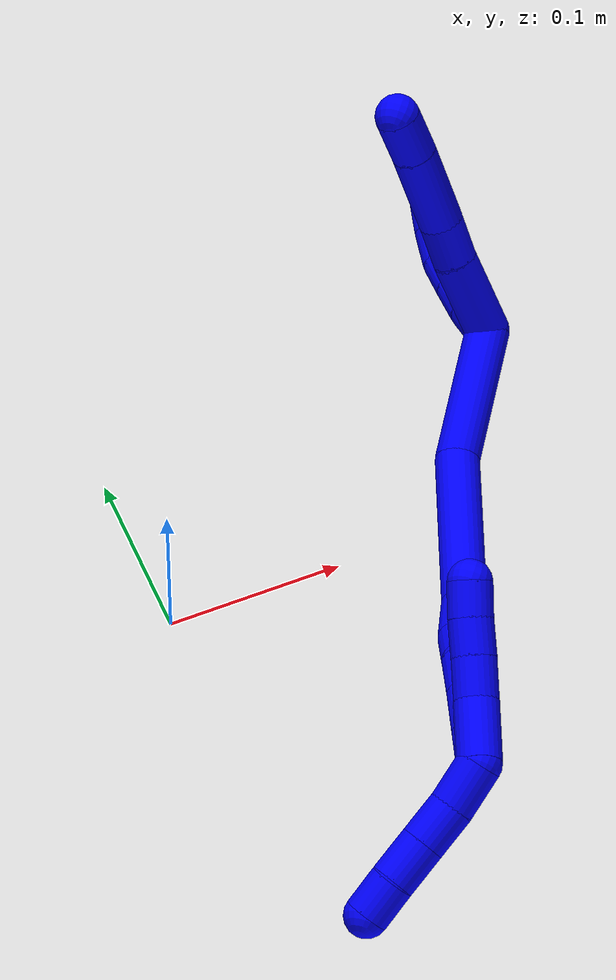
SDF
<sdf version="1.7">
 <world name="default">
  <model name="1">
   <static>0</static>
   <link name="1">
    <collision name="collision-cylinder-e_1_2_8">
     <pose>0.005056 0.022466 -0.007969 -1.91166 0.20901 -0.294834</pose>
     <geometry><cylinder><radius>0.0125</radius><length>0.048735</length></cylinder></geometry>
     <surface>
      <friction><ode><mu>1.16</mu><mu2>1.16</mu2><slip1>0</slip1><slip2>0</slip2></ode></friction>
      <contact><ode><kp>1e+06</kp><kd>1</kd><max_vel>0</max_vel><min_depth>0.001</min_depth></ode></contact>
     </surface>
    </collision>
    <visual name="visual-cylinder-e_1_2_8">
     <pose>0.005056 0.022466 -0.007969 -1.91166 0.20901 -0.294834</pose>
     <geometry><cylinder><radius>0.0125</radius><length>0.048735</length></cylinder></geometry>
     <material><ambient>0 0 1 1</ambient></material>
    </visual>
    <collision name="collision-cylinder-e_2_8_9">
     <pose>0.012987 0.055929 -0.02104 -2.0052 0.232806 -0.362298</pose>
     <geometry><cylinder><radius>0.0125</radius><length>0.024919</length></cylinder></geometry>
     <surface>
      <friction><ode><mu>1.16</mu><mu2>1.16</mu2><slip1>0</slip1><slip2>0</slip2></ode></friction>
      <contact><ode><kp>1e+06</kp><kd>1</kd><max_vel>0</max_vel><min_depth>0.001</min_depth></ode></contact>
     </surface>
    </collision>
    <visual name="visual-cylinder-e_2_8_9">
     <pose>0.012987 0.055929 -0.02104 -2.0052 0.232806 -0.362298</pose>
     <geometry><cylinder><radius>0.0125</radius><length>0.024919</length></cylinder></geometry>
     <material><ambient>0 0 1 1</ambient></material>
    </visual>
    <collision name="collision-cylinder-e_3_9_10">
     <pose>0.024714 0.089507 -0.031649 -1.80997 0.363909 -0.460192</pose>
     <geometry><cylinder><radius>0.0125</radius><length>0.049742</length></cylinder></geometry>
     <surface>
      <friction><ode><mu>1.16</mu><mu2>1.16</mu2><slip1>0</slip1><slip2>0</slip2></ode></friction>
      <contact><ode><kp>1e+06</kp><kd>1</kd><max_vel>0</max_vel><min_depth>0.001</min_depth></ode></contact>
     </surface>
    </collision>
    <visual name="visual-cylinder-e_3_9_10">
     <pose>0.024714 0.089507 -0.031649 -1.80997 0.363909 -0.460192</pose>
     <geometry><cylinder><radius>0.0125</radius><length>0.049742</length></cylinder></geometry>
     <material><ambient>0 0 1 1</ambient></material>
    </visual>
    <collision name="collision-cylinder-e_4_10_6">
     <pose>0.037794 0.124371 -0.040015 -1.79954 0.323438 -0.405338</pose>
     <geometry><cylinder><radius>0.0125</radius><length>0.026604</length></cylinder></geometry>
     <surface>
      <friction><ode><mu>1.16</mu><mu2>1.16</mu2><slip1>0</slip1><slip2>0</slip2></ode></friction>
      <contact><ode><kp>1e+06</kp><kd>1</kd><max_vel>0</max_vel><min_depth>0.001</min_depth></ode></contact>
     </surface>
    </collision>
    <visual name="visual-cylinder-e_4_10_6">
     <pose>0.037794 0.124371 -0.040015 -1.79954 0.323438 -0.405338</pose>
     <geometry><cylinder><radius>0.0125</radius><length>0.026604</length></cylinder></geometry>
     <material><ambient>0 0 1 1</ambient></material>
    </visual>
    <collision name="collision-cylinder-e_1_2_11">
     <pose>-0.006663 0.002929 -0.006857 -2.73787 -0.729226 2.15725</pose>
     <geometry><cylinder><radius>0.0125</radius><length>0.02</length></cylinder></geometry>
     <surface>
      <friction><ode><mu>1.16</mu><mu2>1.16</mu2><slip1>0</slip1><slip2>0</slip2></ode></friction>
      <contact><ode><kp>1e+06</kp><kd>1</kd><max_vel>0</max_vel><min_depth>0.001</min_depth></ode></contact>
     </surface>
    </collision>
    <visual name="visual-cylinder-e_1_2_11">
     <pose>-0.006663 0.002929 -0.006857 -2.73787 -0.729226 2.15725</pose>
     <geometry><cylinder><radius>0.0125</radius><length>0.02</length></cylinder></geometry>
     <material><ambient>0 0 1 1</ambient></material>
    </visual>
    <collision name="collision-cylinder-e_2_11_12">
     <pose>-0.019106 0.008926 -0.021276 -2.75626 -0.616345 2.04192</pose>
     <geometry><cylinder><radius>0.0125</radius><length>0.02</length></cylinder></geometry>
     <surface>
      <friction><ode><mu>1.16</mu><mu2>1.16</mu2><slip1>0</slip1><slip2>0</slip2></ode></friction>
      <contact><ode><kp>1e+06</kp><kd>1</kd><max_vel>0</max_vel><min_depth>0.001</min_depth></ode></contact>
     </surface>
    </collision>
    <visual name="visual-cylinder-e_2_11_12">
     <pose>-0.019106 0.008926 -0.021276 -2.75626 -0.616345 2.04192</pose>
     <geometry><cylinder><radius>0.0125</radius><length>0.02</length></cylinder></geometry>
     <material><ambient>0 0 1 1</ambient></material>
    </visual>
    <collision name="collision-cylinder-e_3_12_13">
     <pose>-0.030539 0.01499 -0.036524 -2.76977 -0.600661 2.05003</pose>
     <geometry><cylinder><radius>0.0125</radius><length>0.02</length></cylinder></geometry>
     <surface>
      <friction><ode><mu>1.16</mu><mu2>1.16</mu2><slip1>0</slip1><slip2>0</slip2></ode></friction>
      <contact><ode><kp>1e+06</kp><kd>1</kd><max_vel>0</max_vel><min_depth>0.001</min_depth></ode></contact>
     </surface>
    </collision>
    <visual name="visual-cylinder-e_3_12_13">
     <pose>-0.030539 0.01499 -0.036524 -2.76977 -0.600661 2.05003</pose>
     <geometry><cylinder><radius>0.0125</radius><length>0.02</length></cylinder></geometry>
     <material><ambient>0 0 1 1</ambient></material>
    </visual>
    <collision name="collision-cylinder-e_4_13_14">
     <pose>-0.039019 0.022213 -0.052821 -2.68542 -0.286779 1.11286</pose>
     <geometry><cylinder><radius>0.0125</radius><length>0.02</length></cylinder></geometry>
     <surface>
      <friction><ode><mu>1.16</mu><mu2>1.16</mu2><slip1>0</slip1><slip2>0</slip2></ode></friction>
      <contact><ode><kp>1e+06</kp><kd>1</kd><max_vel>0</max_vel><min_depth>0.001</min_depth></ode></contact>
     </surface>
    </collision>
    <visual name="visual-cylinder-e_4_13_14">
     <pose>-0.039019 0.022213 -0.052821 -2.68542 -0.286779 1.11286</pose>
     <geometry><cylinder><radius>0.0125</radius><length>0.02</length></cylinder></geometry>
     <material><ambient>0 0 1 1</ambient></material>
    </visual>
    <collision name="collision-cylinder-e_5_14_5">
     <pose>-0.04376 0.030689 -0.070279 -2.69372 -0.192407 0.801543</pose>
     <geometry><cylinder><radius>0.0125</radius><length>0.02</length></cylinder></geometry>
     <surface>
      <friction><ode><mu>1.16</mu><mu2>1.16</mu2><slip1>0</slip1><slip2>0</slip2></ode></friction>
      <contact><ode><kp>1e+06</kp><kd>1</kd><max_vel>0</max_vel><min_depth>0.001</min_depth></ode></contact>
     </surface>
    </collision>
    <visual name="visual-cylinder-e_5_14_5">
     <pose>-0.04376 0.030689 -0.070279 -2.69372 -0.192407 0.801543</pose>
     <geometry><cylinder><radius>0.0125</radius><length>0.02</length></cylinder></geometry>
     <material><ambient>0 0 1 1</ambient></material>
    </visual>
    <collision name="collision-cylinder-e_1_2_15">
     <pose>0.000389 -0.004578 0.040782 0.111792 0.009478 0.00053</pose>
     <geometry><cylinder><radius>0.0125</radius><length>0.08208</length></cylinder></geometry>
     <surface>
      <friction><ode><mu>1.16</mu><mu2>1.16</mu2><slip1>0</slip1><slip2>0</slip2></ode></friction>
      <contact><ode><kp>1e+06</kp><kd>1</kd><max_vel>0</max_vel><min_depth>0.001</min_depth></ode></contact>
     </surface>
    </collision>
    <visual name="visual-cylinder-e_1_2_15">
     <pose>0.000389 -0.004578 0.040782 0.111792 0.009478 0.00053</pose>
     <geometry><cylinder><radius>0.0125</radius><length>0.08208</length></cylinder></geometry>
     <material><ambient>0 0 1 1</ambient></material>
    </visual>
    <collision name="collision-cylinder-e_2_15_16">
     <pose>0.017124 -0.015077 0.127782 0.127409 0.337385 0.021728</pose>
     <geometry><cylinder><radius>0.0125</radius><length>0.098761</length></cylinder></geometry>
     <surface>
      <friction><ode><mu>1.16</mu><mu2>1.16</mu2><slip1>0</slip1><slip2>0</slip2></ode></friction>
      <contact><ode><kp>1e+06</kp><kd>1</kd><max_vel>0</max_vel><min_depth>0.001</min_depth></ode></contact>
     </surface>
    </collision>
    <visual name="visual-cylinder-e_2_15_16">
     <pose>0.017124 -0.015077 0.127782 0.127409 0.337385 0.021728</pose>
     <geometry><cylinder><radius>0.0125</radius><length>0.098761</length></cylinder></geometry>
     <material><ambient>0 0 1 1</ambient></material>
    </visual>
    <collision name="collision-cylinder-e_3_16_17">
     <pose>0.037317 -0.020734 0.185989 -0.02199 0.310444 -0.003441</pose>
     <geometry><cylinder><radius>0.0125</radius><length>0.025186</length></cylinder></geometry>
     <surface>
      <friction><ode><mu>1.16</mu><mu2>1.16</mu2><slip1>0</slip1><slip2>0</slip2></ode></friction>
      <contact><ode><kp>1e+06</kp><kd>1</kd><max_vel>0</max_vel><min_depth>0.001</min_depth></ode></contact>
     </surface>
    </collision>
    <visual name="visual-cylinder-e_3_16_17">
     <pose>0.037317 -0.020734 0.185989 -0.02199 0.310444 -0.003441</pose>
     <geometry><cylinder><radius>0.0125</radius><length>0.025186</length></cylinder></geometry>
     <material><ambient>0 0 1 1</ambient></material>
    </visual>
    <collision name="collision-cylinder-e_4_17_18">
     <pose>0.047622 -0.019147 0.206856 -0.148001 0.623635 -0.047784</pose>
     <geometry><cylinder><radius>0.0125</radius><length>0.022118</length></cylinder></geometry>
     <surface>
      <friction><ode><mu>1.16</mu><mu2>1.16</mu2><slip1>0</slip1><slip2>0</slip2></ode></friction>
      <contact><ode><kp>1e+06</kp><kd>1</kd><max_vel>0</max_vel><min_depth>0.001</min_depth></ode></contact>
     </surface>
    </collision>
    <visual name="visual-cylinder-e_4_17_18">
     <pose>0.047622 -0.019147 0.206856 -0.148001 0.623635 -0.047784</pose>
     <geometry><cylinder><radius>0.0125</radius><length>0.022118</length></cylinder></geometry>
     <material><ambient>0 0 1 1</ambient></material>
    </visual>
    <collision name="collision-cylinder-e_5_18_19">
     <pose>0.058959 -0.019253 0.225933 0.139346 0.4425 0.031392</pose>
     <geometry><cylinder><radius>0.0125</radius><length>0.02279</length></cylinder></geometry>
     <surface>
      <friction><ode><mu>1.16</mu><mu2>1.16</mu2><slip1>0</slip1><slip2>0</slip2></ode></friction>
      <contact><ode><kp>1e+06</kp><kd>1</kd><max_vel>0</max_vel><min_depth>0.001</min_depth></ode></contact>
     </surface>
    </collision>
    <visual name="visual-cylinder-e_5_18_19">
     <pose>0.058959 -0.019253 0.225933 0.139346 0.4425 0.031392</pose>
     <geometry><cylinder><radius>0.0125</radius><length>0.02279</length></cylinder></geometry>
     <material><ambient>0 0 1 1</ambient></material>
    </visual>
    <collision name="collision-cylinder-e_6_19_20">
     <pose>0.069459 -0.022143 0.2482 0.120305 0.433041 0.026494</pose>
     <geometry><cylinder><radius>0.0125</radius><length>0.026789</length></cylinder></geometry>
     <surface>
      <friction><ode><mu>1.16</mu><mu2>1.16</mu2><slip1>0</slip1><slip2>0</slip2></ode></friction>
      <contact><ode><kp>1e+06</kp><kd>1</kd><max_vel>0</max_vel><min_depth>0.001</min_depth></ode></contact>
     </surface>
    </collision>
    <visual name="visual-cylinder-e_6_19_20">
     <pose>0.069459 -0.022143 0.2482 0.120305 0.433041 0.026494</pose>
     <geometry><cylinder><radius>0.0125</radius><length>0.026789</length></cylinder></geometry>
     <material><ambient>0 0 1 1</ambient></material>
    </visual>
    <collision name="collision-cylinder-e_7_20_1">
     <pose>0.079774 -0.024801 0.2703 0.118961 0.43504 0.026322</pose>
     <geometry><cylinder><radius>0.0125</radius><length>0.022278</length></cylinder></geometry>
     <surface>
      <friction><ode><mu>1.16</mu><mu2>1.16</mu2><slip1>0</slip1><slip2>0</slip2></ode></friction>
      <contact><ode><kp>1e+06</kp><kd>1</kd><max_vel>0</max_vel><min_depth>0.001</min_depth></ode></contact>
     </surface>
    </collision>
    <visual name="visual-cylinder-e_7_20_1">
     <pose>0.079774 -0.024801 0.2703 0.118961 0.43504 0.026322</pose>
     <geometry><cylinder><radius>0.0125</radius><length>0.022278</length></cylinder></geometry>
     <material><ambient>0 0 1 1</ambient></material>
    </visual>
    <collision name="collision-cylinder-e_1_1_21">
     <pose>0.077466 -0.027193 0.291985 0.102023 -0.538725 -0.028188</pose>
     <geometry><cylinder><radius>0.0125</radius><length>0.027298</length></cylinder></geometry>
     <surface>
      <friction><ode><mu>1.16</mu><mu2>1.16</mu2><slip1>0</slip1><slip2>0</slip2></ode></friction>
      <contact><ode><kp>1e+06</kp><kd>1</kd><max_vel>0</max_vel><min_depth>0.001</min_depth></ode></contact>
     </surface>
    </collision>
    <visual name="visual-cylinder-e_1_1_21">
     <pose>0.077466 -0.027193 0.291985 0.102023 -0.538725 -0.028188</pose>
     <geometry><cylinder><radius>0.0125</radius><length>0.027298</length></cylinder></geometry>
     <material><ambient>0 0 1 1</ambient></material>
    </visual>
    <collision name="collision-cylinder-e_2_21_22">
     <pose>0.064341 -0.027833 0.314278 -0.051893 -0.521692 0.013855</pose>
     <geometry><cylinder><radius>0.0125</radius><length>0.024572</length></cylinder></geometry>
     <surface>
      <friction><ode><mu>1.16</mu><mu2>1.16</mu2><slip1>0</slip1><slip2>0</slip2></ode></friction>
      <contact><ode><kp>1e+06</kp><kd>1</kd><max_vel>0</max_vel><min_depth>0.001</min_depth></ode></contact>
     </surface>
    </collision>
    <visual name="visual-cylinder-e_2_21_22">
     <pose>0.064341 -0.027833 0.314278 -0.051893 -0.521692 0.013855</pose>
     <geometry><cylinder><radius>0.0125</radius><length>0.024572</length></cylinder></geometry>
     <material><ambient>0 0 1 1</ambient></material>
    </visual>
    <collision name="collision-cylinder-e_3_22_23">
     <pose>0.051822 -0.026743 0.335974 -0.048565 -0.523866 0.013022</pose>
     <geometry><cylinder><radius>0.0125</radius><length>0.025573</length></cylinder></geometry>
     <surface>
      <friction><ode><mu>1.16</mu><mu2>1.16</mu2><slip1>0</slip1><slip2>0</slip2></ode></friction>
      <contact><ode><kp>1e+06</kp><kd>1</kd><max_vel>0</max_vel><min_depth>0.001</min_depth></ode></contact>
     </surface>
    </collision>
    <visual name="visual-cylinder-e_3_22_23">
     <pose>0.051822 -0.026743 0.335974 -0.048565 -0.523866 0.013022</pose>
     <geometry><cylinder><radius>0.0125</radius><length>0.025573</length></cylinder></geometry>
     <material><ambient>0 0 1 1</ambient></material>
    </visual>
    <collision name="collision-cylinder-e_4_23_4">
     <pose>0.039039 -0.026627 0.356319 0.045271 -0.601971 -0.014055</pose>
     <geometry><cylinder><radius>0.0125</radius><length>0.022556</length></cylinder></geometry>
     <surface>
      <friction><ode><mu>1.16</mu><mu2>1.16</mu2><slip1>0</slip1><slip2>0</slip2></ode></friction>
      <contact><ode><kp>1e+06</kp><kd>1</kd><max_vel>0</max_vel><min_depth>0.001</min_depth></ode></contact>
     </surface>
    </collision>
    <visual name="visual-cylinder-e_4_23_4">
     <pose>0.039039 -0.026627 0.356319 0.045271 -0.601971 -0.014055</pose>
     <geometry><cylinder><radius>0.0125</radius><length>0.022556</length></cylinder></geometry>
     <material><ambient>0 0 1 1</ambient></material>
    </visual>
    <collision name="collision-cylinder-e_1_1_24">
     <pose>0.081227 -0.021001 0.263655 -2.85035 -0.184105 1.12358</pose>
     <geometry><cylinder><radius>0.0125</radius><length>0.035416</length></cylinder></geometry>
     <surface>
      <friction><ode><mu>1.16</mu><mu2>1.16</mu2><slip1>0</slip1><slip2>0</slip2></ode></friction>
      <contact><ode><kp>1e+06</kp><kd>1</kd><max_vel>0</max_vel><min_depth>0.001</min_depth></ode></contact>
     </surface>
    </collision>
    <visual name="visual-cylinder-e_1_1_24">
     <pose>0.081227 -0.021001 0.263655 -2.85035 -0.184105 1.12358</pose>
     <geometry><cylinder><radius>0.0125</radius><length>0.035416</length></cylinder></geometry>
     <material><ambient>0 0 1 1</ambient></material>
    </visual>
    <collision name="collision-cylinder-e_2_24_25">
     <pose>0.077674 -0.010797 0.236393 -2.68461 -0.02637 0.113282</pose>
     <geometry><cylinder><radius>0.0125</radius><length>0.023602</length></cylinder></geometry>
     <surface>
      <friction><ode><mu>1.16</mu><mu2>1.16</mu2><slip1>0</slip1><slip2>0</slip2></ode></friction>
      <contact><ode><kp>1e+06</kp><kd>1</kd><max_vel>0</max_vel><min_depth>0.001</min_depth></ode></contact>
     </surface>
    </collision>
    <visual name="visual-cylinder-e_2_24_25">
     <pose>0.077674 -0.010797 0.236393 -2.68461 -0.02637 0.113282</pose>
     <geometry><cylinder><radius>0.0125</radius><length>0.023602</length></cylinder></geometry>
     <material><ambient>0 0 1 1</ambient></material>
    </visual>
    <collision name="collision-cylinder-e_3_25_26">
     <pose>0.077226 -0.000476 0.21672 -2.62887 -0.013185 0.050289</pose>
     <geometry><cylinder><radius>0.0125</radius><length>0.020856</length></cylinder></geometry>
     <surface>
      <friction><ode><mu>1.16</mu><mu2>1.16</mu2><slip1>0</slip1><slip2>0</slip2></ode></friction>
      <contact><ode><kp>1e+06</kp><kd>1</kd><max_vel>0</max_vel><min_depth>0.001</min_depth></ode></contact>
     </surface>
    </collision>
    <visual name="visual-cylinder-e_3_25_26">
     <pose>0.077226 -0.000476 0.21672 -2.62887 -0.013185 0.050289</pose>
     <geometry><cylinder><radius>0.0125</radius><length>0.020856</length></cylinder></geometry>
     <material><ambient>0 0 1 1</ambient></material>
    </visual>
    <collision name="collision-cylinder-e_4_26_3">
     <pose>0.077706 0.009435 0.198809 -2.64372 0.061473 -0.24073</pose>
     <geometry><cylinder><radius>0.0125</radius><length>0.020126</length></cylinder></geometry>
     <surface>
      <friction><ode><mu>1.16</mu><mu2>1.16</mu2><slip1>0</slip1><slip2>0</slip2></ode></friction>
      <contact><ode><kp>1e+06</kp><kd>1</kd><max_vel>0</max_vel><min_depth>0.001</min_depth></ode></contact>
     </surface>
    </collision>
    <visual name="visual-cylinder-e_4_26_3">
     <pose>0.077706 0.009435 0.198809 -2.64372 0.061473 -0.24073</pose>
     <geometry><cylinder><radius>0.0125</radius><length>0.020126</length></cylinder></geometry>
     <material><ambient>0 0 1 1</ambient></material>
    </visual>
    <collision name="collision-sphere-3">
     <pose>0.078325 0.014232 0.189984 0 -0 0</pose>
     <geometry><sphere><radius>0.0125</radius></sphere></geometry>
     <surface>
      <friction><ode><mu>1.16</mu><mu2>1.16</mu2><slip1>0</slip1><slip2>0</slip2></ode></friction>
      <contact><ode><kp>1e+06</kp><kd>1</kd><max_vel>0</max_vel><min_depth>0.001</min_depth></ode></contact>
     </surface>
    </collision>
    <visual name="visual-sphere-3">
     <pose>0.078325 0.014232 0.189984 0 -0 0</pose>
     <geometry><sphere><radius>0.0125</radius></sphere></geometry>
     <material><ambient>0 0 1 1</ambient></material>
    </visual>
    <collision name="collision-sphere-26">
     <pose>0.077088 0.004639 0.207634 0 -0 0</pose>
     <geometry><sphere><radius>0.0125</radius></sphere></geometry>
     <surface>
      <friction><ode><mu>1.16</mu><mu2>1.16</mu2><slip1>0</slip1><slip2>0</slip2></ode></friction>
      <contact><ode><kp>1e+06</kp><kd>1</kd><max_vel>0</max_vel><min_depth>0.001</min_depth></ode></contact>
     </surface>
    </collision>
    <visual name="visual-sphere-26">
     <pose>0.077088 0.004639 0.207634 0 -0 0</pose>
     <geometry><sphere><radius>0.0125</radius></sphere></geometry>
     <material><ambient>0 0 1 1</ambient></material>
    </visual>
    <collision name="collision-sphere-25">
     <pose>0.077363 -0.005591 0.225806 0 -0 0</pose>
     <geometry><sphere><radius>0.0125</radius></sphere></geometry>
     <surface>
      <friction><ode><mu>1.16</mu><mu2>1.16</mu2><slip1>0</slip1><slip2>0</slip2></ode></friction>
      <contact><ode><kp>1e+06</kp><kd>1</kd><max_vel>0</max_vel><min_depth>0.001</min_depth></ode></contact>
     </surface>
    </collision>
    <visual name="visual-sphere-25">
     <pose>0.077363 -0.005591 0.225806 0 -0 0</pose>
     <geometry><sphere><radius>0.0125</radius></sphere></geometry>
     <material><ambient>0 0 1 1</ambient></material>
    </visual>
    <collision name="collision-sphere-24">
     <pose>0.077985 -0.016002 0.246979 0 -0 0</pose>
     <geometry><sphere><radius>0.0125</radius></sphere></geometry>
     <surface>
      <friction><ode><mu>1.16</mu><mu2>1.16</mu2><slip1>0</slip1><slip2>0</slip2></ode></friction>
      <contact><ode><kp>1e+06</kp><kd>1</kd><max_vel>0</max_vel><min_depth>0.001</min_depth></ode></contact>
     </surface>
    </collision>
    <visual name="visual-sphere-24">
     <pose>0.077985 -0.016002 0.246979 0 -0 0</pose>
     <geometry><sphere><radius>0.0125</radius></sphere></geometry>
     <material><ambient>0 0 1 1</ambient></material>
    </visual>
    <collision name="collision-sphere-4">
     <pose>0.032653 -0.027047 0.365605 0 -0 0</pose>
     <geometry><sphere><radius>0.0125</radius></sphere></geometry>
     <surface>
      <friction><ode><mu>1.16</mu><mu2>1.16</mu2><slip1>0</slip1><slip2>0</slip2></ode></friction>
      <contact><ode><kp>1e+06</kp><kd>1</kd><max_vel>0</max_vel><min_depth>0.001</min_depth></ode></contact>
     </surface>
    </collision>
    <visual name="visual-sphere-4">
     <pose>0.032653 -0.027047 0.365605 0 -0 0</pose>
     <geometry><sphere><radius>0.0125</radius></sphere></geometry>
     <material><ambient>0 0 1 1</ambient></material>
    </visual>
    <collision name="collision-sphere-23">
     <pose>0.045425 -0.026206 0.347033 0 -0 0</pose>
     <geometry><sphere><radius>0.0125</radius></sphere></geometry>
     <surface>
      <friction><ode><mu>1.16</mu><mu2>1.16</mu2><slip1>0</slip1><slip2>0</slip2></ode></friction>
      <contact><ode><kp>1e+06</kp><kd>1</kd><max_vel>0</max_vel><min_depth>0.001</min_depth></ode></contact>
     </surface>
    </collision>
    <visual name="visual-sphere-23">
     <pose>0.045425 -0.026206 0.347033 0 -0 0</pose>
     <geometry><sphere><radius>0.0125</radius></sphere></geometry>
     <material><ambient>0 0 1 1</ambient></material>
    </visual>
    <collision name="collision-sphere-22">
     <pose>0.058218 -0.027281 0.324916 0 -0 0</pose>
     <geometry><sphere><radius>0.0125</radius></sphere></geometry>
     <surface>
      <friction><ode><mu>1.16</mu><mu2>1.16</mu2><slip1>0</slip1><slip2>0</slip2></ode></friction>
      <contact><ode><kp>1e+06</kp><kd>1</kd><max_vel>0</max_vel><min_depth>0.001</min_depth></ode></contact>
     </surface>
    </collision>
    <visual name="visual-sphere-22">
     <pose>0.058218 -0.027281 0.324916 0 -0 0</pose>
     <geometry><sphere><radius>0.0125</radius></sphere></geometry>
     <material><ambient>0 0 1 1</ambient></material>
    </visual>
    <collision name="collision-sphere-21">
     <pose>0.070464 -0.028386 0.303641 0 -0 0</pose>
     <geometry><sphere><radius>0.0125</radius></sphere></geometry>
     <surface>
      <friction><ode><mu>1.16</mu><mu2>1.16</mu2><slip1>0</slip1><slip2>0</slip2></ode></friction>
      <contact><ode><kp>1e+06</kp><kd>1</kd><max_vel>0</max_vel><min_depth>0.001</min_depth></ode></contact>
     </surface>
    </collision>
    <visual name="visual-sphere-21">
     <pose>0.070464 -0.028386 0.303641 0 -0 0</pose>
     <geometry><sphere><radius>0.0125</radius></sphere></geometry>
     <material><ambient>0 0 1 1</ambient></material>
    </visual>
    <collision name="collision-sphere-1">
     <pose>0.084469 -0.025999 0.28033 0 -0 0</pose>
     <geometry><sphere><radius>0.0125</radius></sphere></geometry>
     <surface>
      <friction><ode><mu>1.16</mu><mu2>1.16</mu2><slip1>0</slip1><slip2>0</slip2></ode></friction>
      <contact><ode><kp>1e+06</kp><kd>1</kd><max_vel>0</max_vel><min_depth>0.001</min_depth></ode></contact>
     </surface>
    </collision>
    <visual name="visual-sphere-1">
     <pose>0.084469 -0.025999 0.28033 0 -0 0</pose>
     <geometry><sphere><radius>0.0125</radius></sphere></geometry>
     <material><ambient>0 0 1 1</ambient></material>
    </visual>
    <collision name="collision-sphere-11">
     <pose>-0.013326 0.005859 -0.013715 0 -0 0</pose>
     <geometry><sphere><radius>0.0125</radius></sphere></geometry>
     <surface>
      <friction><ode><mu>1.16</mu><mu2>1.16</mu2><slip1>0</slip1><slip2>0</slip2></ode></friction>
      <contact><ode><kp>1e+06</kp><kd>1</kd><max_vel>0</max_vel><min_depth>0.001</min_depth></ode></contact>
     </surface>
    </collision>
    <visual name="visual-sphere-11">
     <pose>-0.013326 0.005859 -0.013715 0 -0 0</pose>
     <geometry><sphere><radius>0.0125</radius></sphere></geometry>
     <material><ambient>0 0 1 1</ambient></material>
    </visual>
    <collision name="collision-sphere-6">
     <pose>0.042021 0.136655 -0.042874 0 -0 0</pose>
     <geometry><sphere><radius>0.0125</radius></sphere></geometry>
     <surface>
      <friction><ode><mu>1.16</mu><mu2>1.16</mu2><slip1>0</slip1><slip2>0</slip2></ode></friction>
      <contact><ode><kp>1e+06</kp><kd>1</kd><max_vel>0</max_vel><min_depth>0.001</min_depth></ode></contact>
     </surface>
    </collision>
    <visual name="visual-sphere-6">
     <pose>0.042021 0.136655 -0.042874 0 -0 0</pose>
     <geometry><sphere><radius>0.0125</radius></sphere></geometry>
     <material><ambient>0 0 1 1</ambient></material>
    </visual>
    <collision name="collision-sphere-10">
     <pose>0.033566 0.112088 -0.037155 0 -0 0</pose>
     <geometry><sphere><radius>0.0125</radius></sphere></geometry>
     <surface>
      <friction><ode><mu>1.16</mu><mu2>1.16</mu2><slip1>0</slip1><slip2>0</slip2></ode></friction>
      <contact><ode><kp>1e+06</kp><kd>1</kd><max_vel>0</max_vel><min_depth>0.001</min_depth></ode></contact>
     </surface>
    </collision>
    <visual name="visual-sphere-10">
     <pose>0.033566 0.112088 -0.037155 0 -0 0</pose>
     <geometry><sphere><radius>0.0125</radius></sphere></geometry>
     <material><ambient>0 0 1 1</ambient></material>
    </visual>
    <collision name="collision-sphere-9">
     <pose>0.015861 0.066927 -0.026143 0 -0 0</pose>
     <geometry><sphere><radius>0.0125</radius></sphere></geometry>
     <surface>
      <friction><ode><mu>1.16</mu><mu2>1.16</mu2><slip1>0</slip1><slip2>0</slip2></ode></friction>
      <contact><ode><kp>1e+06</kp><kd>1</kd><max_vel>0</max_vel><min_depth>0.001</min_depth></ode></contact>
     </surface>
    </collision>
    <visual name="visual-sphere-9">
     <pose>0.015861 0.066927 -0.026143 0 -0 0</pose>
     <geometry><sphere><radius>0.0125</radius></sphere></geometry>
     <material><ambient>0 0 1 1</ambient></material>
    </visual>
    <collision name="collision-sphere-2">
     <geometry><sphere><radius>0.0125</radius></sphere></geometry>
     <surface>
      <friction><ode><mu>1.16</mu><mu2>1.16</mu2><slip1>0</slip1><slip2>0</slip2></ode></friction>
      <contact><ode><kp>1e+06</kp><kd>1</kd><max_vel>0</max_vel><min_depth>0.001</min_depth></ode></contact>
     </surface>
    </collision>
    <visual name="visual-sphere-2">
     <geometry><sphere><radius>0.0125</radius></sphere></geometry>
     <material><ambient>0 0 1 1</ambient></material>
    </visual>
    <collision name="collision-sphere-19">
     <pose>0.063839 -0.020683 0.23613 0 -0 0</pose>
     <geometry><sphere><radius>0.0125</radius></sphere></geometry>
     <surface>
      <friction><ode><mu>1.16</mu><mu2>1.16</mu2><slip1>0</slip1><slip2>0</slip2></ode></friction>
      <contact><ode><kp>1e+06</kp><kd>1</kd><max_vel>0</max_vel><min_depth>0.001</min_depth></ode></contact>
     </surface>
    </collision>
    <visual name="visual-sphere-19">
     <pose>0.063839 -0.020683 0.23613 0 -0 0</pose>
     <geometry><sphere><radius>0.0125</radius></sphere></geometry>
     <material><ambient>0 0 1 1</ambient></material>
    </visual>
    <collision name="collision-sphere-8">
     <pose>0.010112 0.044932 -0.015938 0 -0 0</pose>
     <geometry><sphere><radius>0.0125</radius></sphere></geometry>
     <surface>
      <friction><ode><mu>1.16</mu><mu2>1.16</mu2><slip1>0</slip1><slip2>0</slip2></ode></friction>
      <contact><ode><kp>1e+06</kp><kd>1</kd><max_vel>0</max_vel><min_depth>0.001</min_depth></ode></contact>
     </surface>
    </collision>
    <visual name="visual-sphere-8">
     <pose>0.010112 0.044932 -0.015938 0 -0 0</pose>
     <geometry><sphere><radius>0.0125</radius></sphere></geometry>
     <material><ambient>0 0 1 1</ambient></material>
    </visual>
    <collision name="collision-sphere-12">
     <pose>-0.024887 0.011993 -0.028838 0 -0 0</pose>
     <geometry><sphere><radius>0.0125</radius></sphere></geometry>
     <surface>
      <friction><ode><mu>1.16</mu><mu2>1.16</mu2><slip1>0</slip1><slip2>0</slip2></ode></friction>
      <contact><ode><kp>1e+06</kp><kd>1</kd><max_vel>0</max_vel><min_depth>0.001</min_depth></ode></contact>
     </surface>
    </collision>
    <visual name="visual-sphere-12">
     <pose>-0.024887 0.011993 -0.028838 0 -0 0</pose>
     <geometry><sphere><radius>0.0125</radius></sphere></geometry>
     <material><ambient>0 0 1 1</ambient></material>
    </visual>
    <collision name="collision-sphere-13">
     <pose>-0.036191 0.017987 -0.04421 0 -0 0</pose>
     <geometry><sphere><radius>0.0125</radius></sphere></geometry>
     <surface>
      <friction><ode><mu>1.16</mu><mu2>1.16</mu2><slip1>0</slip1><slip2>0</slip2></ode></friction>
      <contact><ode><kp>1e+06</kp><kd>1</kd><max_vel>0</max_vel><min_depth>0.001</min_depth></ode></contact>
     </surface>
    </collision>
    <visual name="visual-sphere-13">
     <pose>-0.036191 0.017987 -0.04421 0 -0 0</pose>
     <geometry><sphere><radius>0.0125</radius></sphere></geometry>
     <material><ambient>0 0 1 1</ambient></material>
    </visual>
    <collision name="collision-sphere-14">
     <pose>-0.041848 0.026438 -0.061431 0 -0 0</pose>
     <geometry><sphere><radius>0.0125</radius></sphere></geometry>
     <surface>
      <friction><ode><mu>1.16</mu><mu2>1.16</mu2><slip1>0</slip1><slip2>0</slip2></ode></friction>
      <contact><ode><kp>1e+06</kp><kd>1</kd><max_vel>0</max_vel><min_depth>0.001</min_depth></ode></contact>
     </surface>
    </collision>
    <visual name="visual-sphere-14">
     <pose>-0.041848 0.026438 -0.061431 0 -0 0</pose>
     <geometry><sphere><radius>0.0125</radius></sphere></geometry>
     <material><ambient>0 0 1 1</ambient></material>
    </visual>
    <collision name="collision-sphere-5">
     <pose>-0.045672 0.034939 -0.079126 0 -0 0</pose>
     <geometry><sphere><radius>0.0125</radius></sphere></geometry>
     <surface>
      <friction><ode><mu>1.16</mu><mu2>1.16</mu2><slip1>0</slip1><slip2>0</slip2></ode></friction>
      <contact><ode><kp>1e+06</kp><kd>1</kd><max_vel>0</max_vel><min_depth>0.001</min_depth></ode></contact>
     </surface>
    </collision>
    <visual name="visual-sphere-5">
     <pose>-0.045672 0.034939 -0.079126 0 -0 0</pose>
     <geometry><sphere><radius>0.0125</radius></sphere></geometry>
     <material><ambient>0 0 1 1</ambient></material>
    </visual>
    <collision name="collision-sphere-15">
     <pose>0.000778 -0.009156 0.081564 0 -0 0</pose>
     <geometry><sphere><radius>0.0125</radius></sphere></geometry>
     <surface>
      <friction><ode><mu>1.16</mu><mu2>1.16</mu2><slip1>0</slip1><slip2>0</slip2></ode></friction>
      <contact><ode><kp>1e+06</kp><kd>1</kd><max_vel>0</max_vel><min_depth>0.001</min_depth></ode></contact>
     </surface>
    </collision>
    <visual name="visual-sphere-15">
     <pose>0.000778 -0.009156 0.081564 0 -0 0</pose>
     <geometry><sphere><radius>0.0125</radius></sphere></geometry>
     <material><ambient>0 0 1 1</ambient></material>
    </visual>
    <collision name="collision-sphere-16">
     <pose>0.03347 -0.020998 0.174001 0 -0 0</pose>
     <geometry><sphere><radius>0.0125</radius></sphere></geometry>
     <surface>
      <friction><ode><mu>1.16</mu><mu2>1.16</mu2><slip1>0</slip1><slip2>0</slip2></ode></friction>
      <contact><ode><kp>1e+06</kp><kd>1</kd><max_vel>0</max_vel><min_depth>0.001</min_depth></ode></contact>
     </surface>
    </collision>
    <visual name="visual-sphere-16">
     <pose>0.03347 -0.020998 0.174001 0 -0 0</pose>
     <geometry><sphere><radius>0.0125</radius></sphere></geometry>
     <material><ambient>0 0 1 1</ambient></material>
    </visual>
    <collision name="collision-sphere-17">
     <pose>0.041164 -0.020471 0.197977 0 -0 0</pose>
     <geometry><sphere><radius>0.0125</radius></sphere></geometry>
     <surface>
      <friction><ode><mu>1.16</mu><mu2>1.16</mu2><slip1>0</slip1><slip2>0</slip2></ode></friction>
      <contact><ode><kp>1e+06</kp><kd>1</kd><max_vel>0</max_vel><min_depth>0.001</min_depth></ode></contact>
     </surface>
    </collision>
    <visual name="visual-sphere-17">
     <pose>0.041164 -0.020471 0.197977 0 -0 0</pose>
     <geometry><sphere><radius>0.0125</radius></sphere></geometry>
     <material><ambient>0 0 1 1</ambient></material>
    </visual>
    <collision name="collision-sphere-18">
     <pose>0.05408 -0.017823 0.215735 0 -0 0</pose>
     <geometry><sphere><radius>0.0125</radius></sphere></geometry>
     <surface>
      <friction><ode><mu>1.16</mu><mu2>1.16</mu2><slip1>0</slip1><slip2>0</slip2></ode></friction>
      <contact><ode><kp>1e+06</kp><kd>1</kd><max_vel>0</max_vel><min_depth>0.001</min_depth></ode></contact>
     </surface>
    </collision>
    <visual name="visual-sphere-18">
     <pose>0.05408 -0.017823 0.215735 0 -0 0</pose>
     <geometry><sphere><radius>0.0125</radius></sphere></geometry>
     <material><ambient>0 0 1 1</ambient></material>
    </visual>
    <collision name="collision-sphere-20">
     <pose>0.07508 -0.023602 0.26027 0 -0 0</pose>
     <geometry><sphere><radius>0.0125</radius></sphere></geometry>
     <surface>
      <friction><ode><mu>1.16</mu><mu2>1.16</mu2><slip1>0</slip1><slip2>0</slip2></ode></friction>
      <contact><ode><kp>1e+06</kp><kd>1</kd><max_vel>0</max_vel><min_depth>0.001</min_depth></ode></contact>
     </surface>
    </collision>
    <visual name="visual-sphere-20">
     <pose>0.07508 -0.023602 0.26027 0 -0 0</pose>
     <geometry><sphere><radius>0.0125</radius></sphere></geometry>
     <material><ambient>0 0 1 1</ambient></material>
    </visual>
    <inertial>
     <pose>0.030009 0.005227 0.122 0 -0 0</pose>
     <mass>0.75</mass>
     <inertia>
      <ixx>0.000182</ixx>
      <ixy>0</ixy>
      <ixz>0</ixz>
      <iyy>0.000158</iyy>
      <iyz>0</iyz>
      <izz>-3.6e-05</izz>
     </inertia>
    </inertial>
   </link>
   <pose>0.226494 0.085172 0.048544 1.7201 -0.75068 -0.80557</pose>
  </model>
 </world>
</sdf>
